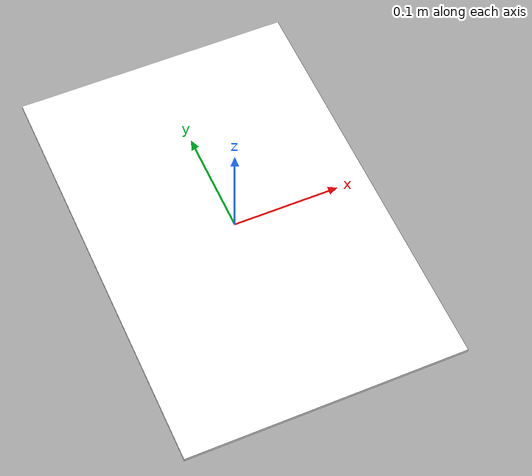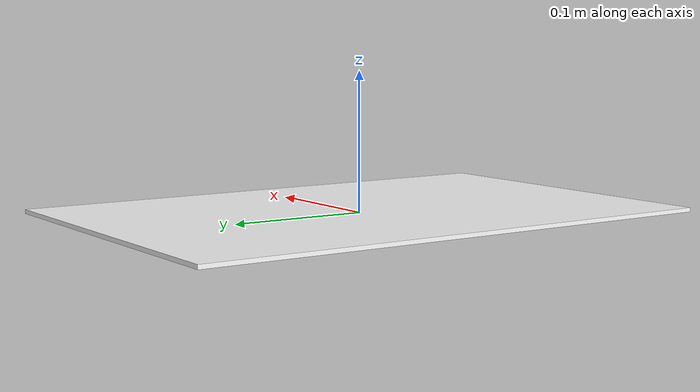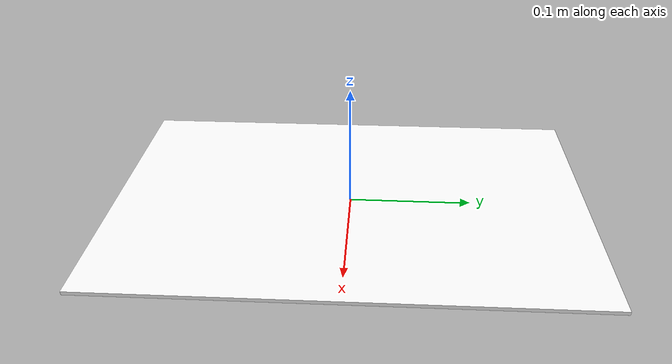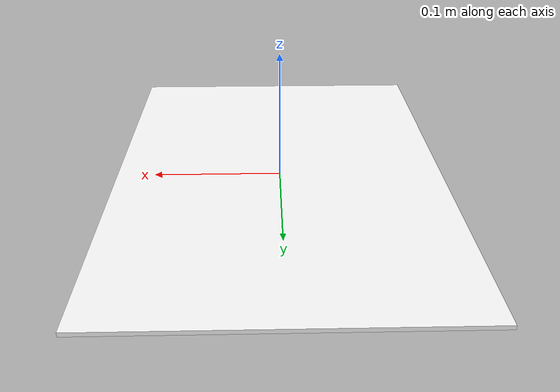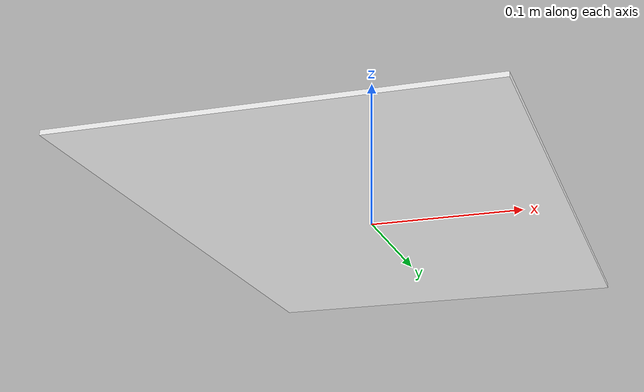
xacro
<?xml version="1.0"?>
<robot xmlns:xacro="http://www.ros.org/wiki/xacro" name="calibration_board">

  <!-- ── Parameters ─────────────────────────────────────────────────── -->
  <xacro:property name="board_width"  value="0.258"/>
  <xacro:property name="board_height" value="0.392"/>
  <xacro:property name="board_thick"  value="0.003"/>
  <xacro:property name="board_mass"   value="0.180"/>  <!-- kg -->

  <!-- ── Material ───────────────────────────────────────────────────── -->
  <material name="board_white">
    <color rgba="1 1 1 1"/>
  </material>

  <!-- ── Macro definition ───────────────────────────────────────────── -->
  <xacro:macro name="calibration_board"
               params="parent board_name:=calibration_board *origin">

    <!-- Fixed joint attaching the board to the parent frame -->
    <joint name="${board_name}_joint" type="fixed">
      <parent link="${parent}"/>
      <child  link="${board_name}_link"/>
      <xacro:insert_block name="origin"/>
    </joint>

    <link name="${board_name}_link">

      <!-- Visual -->
      <visual>
        <origin xyz="0 0 0" rpy="0 0 0"/>
        <geometry>
          <!-- Prefer the Collada mesh exported from Blender if available -->
          <!-- Fallback: simple box primitive -->
          <box size="${board_width} ${board_height} ${board_thick}"/>
        </geometry>
        <material name="board_white"/>
      </visual>

      <!-- Collision -->
      <collision>
        <origin xyz="0 0 0" rpy="0 0 0"/>
        <geometry>
          <box size="${board_width} ${board_height} ${board_thick}"/>
        </geometry>
      </collision>

      <!-- Inertial (thin flat plate) -->
      <inertial>
        <mass value="${board_mass}"/>
        <origin xyz="0 0 0" rpy="0 0 0"/>
        <inertia
          ixx="${board_mass * (board_height*board_height + board_thick*board_thick) / 12}"
          iyy="${board_mass * (board_width*board_width  + board_thick*board_thick) / 12}"
          izz="${board_mass * (board_width*board_width  + board_height*board_height) / 12}"
          ixy="0" ixz="0" iyz="0"/>
      </inertial>

    </link>

  </xacro:macro>

  <!-- ── Standalone usage (when run as a top-level URDF) ────────────── -->
  <link name="world"/>

  <xacro:calibration_board parent="world" board_name="calibration_board">
    <origin xyz="0 0 0.0015" rpy="0 0 0"/>
    <!-- Z offset of 0.0015 = half thickness, so bottom face rests at Z=0 -->
  </xacro:calibration_board>

</robot>
